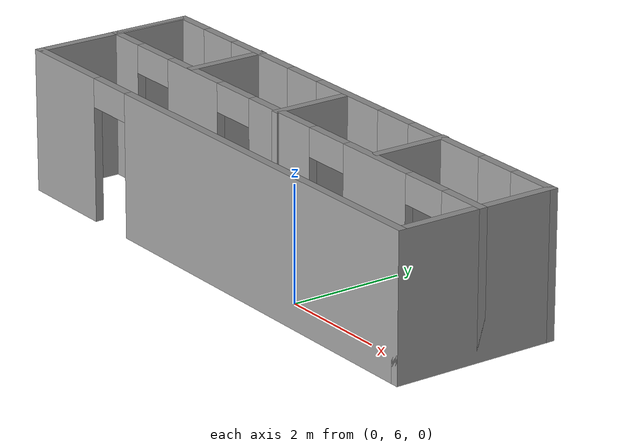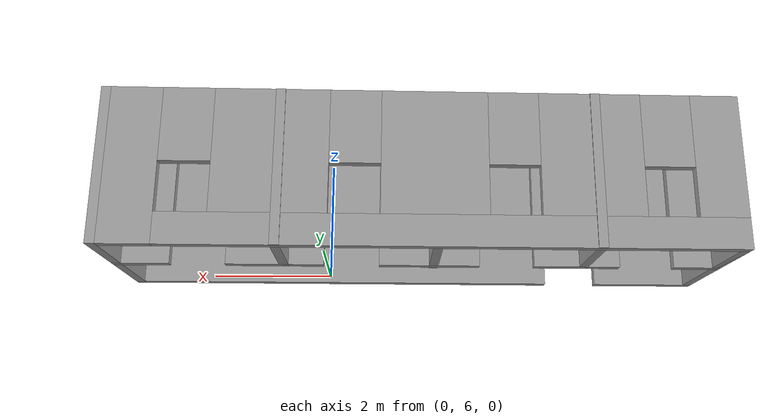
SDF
<?xml version='1.0'?>
<sdf version='1.7'>
  <model name='hospital'>
    <pose>-1.51099 4.19428 0 0 -0 0</pose>
    <link name='Wall_11'>
      <collision name='Wall_11_Collision'>
        <geometry>
          <box>
            <size>1.5 0.15 2.5</size>
          </box>
        </geometry>
        <pose>0 0 1.25 0 -0 0</pose>
      </collision>
      <visual name='Wall_11_Visual'>
        <pose>0 0 1.25 0 -0 0</pose>
        <geometry>
          <box>
            <size>1.5 0.15 2.5</size>
          </box>
        </geometry>
        <material>
          <script>
            <uri>file://media/materials/scripts/gazebo.material</uri>
            <name>Gazebo/Grey</name>
          </script>
          <ambient>1 1 1 1</ambient>
        </material>
        <meta>
          <layer>0</layer>
        </meta>
      </visual>
      <pose>2.22844 3.44428 0 0 -0 -1.5708</pose>
    </link>
    <link name='Wall_13'>
      <collision name='Wall_13_Collision'>
        <geometry>
          <box>
            <size>1.5 0.15 2.5</size>
          </box>
        </geometry>
        <pose>0 0 1.25 0 -0 0</pose>
      </collision>
      <visual name='Wall_13_Visual'>
        <pose>0 0 1.25 0 -0 0</pose>
        <geometry>
          <box>
            <size>1.5 0.15 2.5</size>
          </box>
        </geometry>
        <material>
          <script>
            <uri>file://media/materials/scripts/gazebo.material</uri>
            <name>Gazebo/Grey</name>
          </script>
          <ambient>1 1 1 1</ambient>
        </material>
        <meta>
          <layer>0</layer>
        </meta>
      </visual>
      <pose>-2.70376 3.44428 0 0 -0 -1.5708</pose>
    </link>
    <link name='Wall_15'>
      <collision name='Wall_15_Collision'>
        <geometry>
          <box>
            <size>1.5 0.15 2.5</size>
          </box>
        </geometry>
        <pose>0 0 1.25 0 -0 0</pose>
      </collision>
      <visual name='Wall_15_Visual'>
        <pose>0 0 1.25 0 -0 0</pose>
        <geometry>
          <box>
            <size>1.5 0.15 2.5</size>
          </box>
        </geometry>
        <material>
          <script>
            <uri>file://media/materials/scripts/gazebo.material</uri>
            <name>Gazebo/Grey</name>
          </script>
          <ambient>1 1 1 1</ambient>
        </material>
        <meta>
          <layer>0</layer>
        </meta>
      </visual>
      <pose>-0.220173 3.39181 0 0 -0 -1.5708</pose>
    </link>
    <link name='Wall_4'>
      <collision name='Wall_4_Collision'>
        <geometry>
          <box>
            <size>3 0.15 2.5</size>
          </box>
        </geometry>
        <pose>0 0 1.25 0 -0 0</pose>
      </collision>
      <visual name='Wall_4_Visual'>
        <pose>0 0 1.25 0 -0 0</pose>
        <geometry>
          <box>
            <size>3 0.15 2.5</size>
          </box>
        </geometry>
        <material>
          <script>
            <uri>file://media/materials/scripts/gazebo.material</uri>
            <name>Gazebo/Grey</name>
          </script>
          <ambient>1 1 1 1</ambient>
        </material>
        <meta>
          <layer>0</layer>
        </meta>
      </visual>
      <pose>-4.925 2.67679 0 0 -0 -1.5708</pose>
    </link>
    <link name='Wall_5'>
      <pose>0 1.25179 0 0 -0 0</pose>
      <visual name='Wall_5_Visual_0'>
        <pose>-4.11186 0 1.25 0 -0 0</pose>
        <geometry>
          <box>
            <size>1.77628 0.15 2.5</size>
          </box>
        </geometry>
        <material>
          <script>
            <uri>file://media/materials/scripts/gazebo.material</uri>
            <name>Gazebo/Grey</name>
          </script>
          <ambient>1 1 1 1</ambient>
        </material>
        <meta>
          <layer>0</layer>
        </meta>
      </visual>
      <collision name='Wall_5_Collision_0'>
        <geometry>
          <box>
            <size>1.77628 0.15 2.5</size>
          </box>
        </geometry>
        <pose>-4.11186 0 1.25 0 -0 0</pose>
      </collision>
      <visual name='Wall_5_Visual_1'>
        <pose>1.33814 0 1.25 0 -0 0</pose>
        <geometry>
          <box>
            <size>7.32372 0.15 2.5</size>
          </box>
        </geometry>
        <material>
          <script>
            <uri>file://media/materials/scripts/gazebo.material</uri>
            <name>Gazebo/Grey</name>
          </script>
          <ambient>1 1 1 1</ambient>
        </material>
        <meta>
          <layer>0</layer>
        </meta>
      </visual>
      <collision name='Wall_5_Collision_1'>
        <geometry>
          <box>
            <size>7.32372 0.15 2.5</size>
          </box>
        </geometry>
        <pose>1.33814 0 1.25 0 -0 0</pose>
      </collision>
      <visual name='Wall_5_Visual_2'>
        <pose>-2.77372 0 2.25 0 -0 0</pose>
        <geometry>
          <box>
            <size>0.9 0.15 0.5</size>
          </box>
        </geometry>
        <material>
          <script>
            <uri>file://media/materials/scripts/gazebo.material</uri>
            <name>Gazebo/Grey</name>
          </script>
          <ambient>1 1 1 1</ambient>
        </material>
        <meta>
          <layer>0</layer>
        </meta>
      </visual>
      <collision name='Wall_5_Collision_2'>
        <geometry>
          <box>
            <size>0.9 0.15 0.5</size>
          </box>
        </geometry>
        <pose>-2.77372 0 2.25 0 -0 0</pose>
      </collision>
    </link>
    <link name='Wall_6'>
      <collision name='Wall_6_Collision'>
        <geometry>
          <box>
            <size>3 0.15 2.5</size>
          </box>
        </geometry>
        <pose>0 0 1.25 0 -0 0</pose>
      </collision>
      <visual name='Wall_6_Visual'>
        <pose>0 0 1.25 0 -0 0</pose>
        <geometry>
          <box>
            <size>3 0.15 2.5</size>
          </box>
        </geometry>
        <material>
          <script>
            <uri>file://media/materials/scripts/gazebo.material</uri>
            <name>Gazebo/Grey</name>
          </script>
          <ambient>1 1 1 1</ambient>
        </material>
        <meta>
          <layer>0</layer>
        </meta>
      </visual>
      <pose>4.925 2.67679 0 0 -0 1.5708</pose>
    </link>
    <link name='Wall_7'>
      <pose>0 4.10179 0 0 -0 3.14159</pose>
      <visual name='Wall_7_Visual_0'>
        <pose>-4.52257 0 1.25 0 -0 0</pose>
        <geometry>
          <box>
            <size>0.954869 0.15 2.5</size>
          </box>
        </geometry>
        <material>
          <script>
            <uri>file://media/materials/scripts/gazebo.material</uri>
            <name>Gazebo/Grey</name>
          </script>
          <ambient>1 1 1 1</ambient>
        </material>
        <meta>
          <layer>0</layer>
        </meta>
      </visual>
      <collision name='Wall_7_Collision_0'>
        <geometry>
          <box>
            <size>0.954869 0.15 2.5</size>
          </box>
        </geometry>
        <pose>-4.52257 0 1.25 0 -0 0</pose>
      </collision>
      <visual name='Wall_7_Visual_1'>
        <pose>0.477435 0 0.25 0 -0 0</pose>
        <geometry>
          <box>
            <size>9.04513 0.15 0.5</size>
          </box>
        </geometry>
        <material>
          <script>
            <uri>file://media/materials/scripts/gazebo.material</uri>
            <name>Gazebo/Grey</name>
          </script>
          <ambient>1 1 1 1</ambient>
        </material>
        <meta>
          <layer>0</layer>
        </meta>
      </visual>
      <collision name='Wall_7_Collision_1'>
        <geometry>
          <box>
            <size>9.04513 0.15 0.5</size>
          </box>
        </geometry>
        <pose>0.477435 0 0.25 0 -0 0</pose>
      </collision>
      <visual name='Wall_7_Visual_2'>
        <pose>-2.35087 0 1.5 0 -0 0</pose>
        <geometry>
          <box>
            <size>1.78853 0.15 2</size>
          </box>
        </geometry>
        <material>
          <script>
            <uri>file://media/materials/scripts/gazebo.material</uri>
            <name>Gazebo/Grey</name>
          </script>
          <ambient>1 1 1 1</ambient>
        </material>
        <meta>
          <layer>0</layer>
        </meta>
      </visual>
      <collision name='Wall_7_Collision_2'>
        <geometry>
          <box>
            <size>1.78853 0.15 2</size>
          </box>
        </geometry>
        <pose>-2.35087 0 1.5 0 -0 0</pose>
      </collision>
      <visual name='Wall_7_Visual_3'>
        <pose>0.176448 0 1.5 0 -0 0</pose>
        <geometry>
          <box>
            <size>1.6661 0.15 2</size>
          </box>
        </geometry>
        <material>
          <script>
            <uri>file://media/materials/scripts/gazebo.material</uri>
            <name>Gazebo/Grey</name>
          </script>
          <ambient>1 1 1 1</ambient>
        </material>
        <meta>
          <layer>0</layer>
        </meta>
      </visual>
      <collision name='Wall_7_Collision_3'>
        <geometry>
          <box>
            <size>1.6661 0.15 2</size>
          </box>
        </geometry>
        <pose>0.176448 0 1.5 0 -0 0</pose>
      </collision>
      <visual name='Wall_7_Visual_4'>
        <pose>2.61631 0 1.5 0 -0 0</pose>
        <geometry>
          <box>
            <size>1.61363 0.15 2</size>
          </box>
        </geometry>
        <material>
          <script>
            <uri>file://media/materials/scripts/gazebo.material</uri>
            <name>Gazebo/Grey</name>
          </script>
          <ambient>1 1 1 1</ambient>
        </material>
        <meta>
          <layer>0</layer>
        </meta>
      </visual>
      <collision name='Wall_7_Collision_4'>
        <geometry>
          <box>
            <size>1.61363 0.15 2</size>
          </box>
        </geometry>
        <pose>2.61631 0 1.5 0 -0 0</pose>
      </collision>
      <visual name='Wall_7_Visual_5'>
        <pose>4.61156 0 1.5 0 -0 0</pose>
        <geometry>
          <box>
            <size>0.776874 0.15 2</size>
          </box>
        </geometry>
        <material>
          <script>
            <uri>file://media/materials/scripts/gazebo.material</uri>
            <name>Gazebo/Grey</name>
          </script>
          <ambient>1 1 1 1</ambient>
        </material>
        <meta>
          <layer>0</layer>
        </meta>
      </visual>
      <collision name='Wall_7_Collision_5'>
        <geometry>
          <box>
            <size>0.776874 0.15 2</size>
          </box>
        </geometry>
        <pose>4.61156 0 1.5 0 -0 0</pose>
      </collision>
      <visual name='Wall_7_Visual_6'>
        <pose>-3.64513 0 1.9 0 -0 0</pose>
        <geometry>
          <box>
            <size>0.8 0.15 1.2</size>
          </box>
        </geometry>
        <material>
          <script>
            <uri>file://media/materials/scripts/gazebo.material</uri>
            <name>Gazebo/Grey</name>
          </script>
          <ambient>1 1 1 1</ambient>
        </material>
        <meta>
          <layer>0</layer>
        </meta>
      </visual>
      <collision name='Wall_7_Collision_6'>
        <geometry>
          <box>
            <size>0.8 0.15 1.2</size>
          </box>
        </geometry>
        <pose>-3.64513 0 1.9 0 -0 0</pose>
      </collision>
      <visual name='Wall_7_Visual_7'>
        <pose>-1.0566 0 1.9 0 -0 0</pose>
        <geometry>
          <box>
            <size>0.8 0.15 1.2</size>
          </box>
        </geometry>
        <material>
          <script>
            <uri>file://media/materials/scripts/gazebo.material</uri>
            <name>Gazebo/Grey</name>
          </script>
          <ambient>1 1 1 1</ambient>
        </material>
        <meta>
          <layer>0</layer>
        </meta>
      </visual>
      <collision name='Wall_7_Collision_7'>
        <geometry>
          <box>
            <size>0.8 0.15 1.2</size>
          </box>
        </geometry>
        <pose>-1.0566 0 1.9 0 -0 0</pose>
      </collision>
      <visual name='Wall_7_Visual_8'>
        <pose>1.4095 0 1.9 0 -0 0</pose>
        <geometry>
          <box>
            <size>0.8 0.15 1.2</size>
          </box>
        </geometry>
        <material>
          <script>
            <uri>file://media/materials/scripts/gazebo.material</uri>
            <name>Gazebo/Grey</name>
          </script>
          <ambient>1 1 1 1</ambient>
        </material>
        <meta>
          <layer>0</layer>
        </meta>
      </visual>
      <collision name='Wall_7_Collision_8'>
        <geometry>
          <box>
            <size>0.8 0.15 1.2</size>
          </box>
        </geometry>
        <pose>1.4095 0 1.9 0 -0 0</pose>
      </collision>
      <visual name='Wall_7_Visual_9'>
        <pose>3.82313 0 1.9 0 -0 0</pose>
        <geometry>
          <box>
            <size>0.8 0.15 1.2</size>
          </box>
        </geometry>
        <material>
          <script>
            <uri>file://media/materials/scripts/gazebo.material</uri>
            <name>Gazebo/Grey</name>
          </script>
          <ambient>1 1 1 1</ambient>
        </material>
        <meta>
          <layer>0</layer>
        </meta>
      </visual>
      <collision name='Wall_7_Collision_9'>
        <geometry>
          <box>
            <size>0.8 0.15 1.2</size>
          </box>
        </geometry>
        <pose>3.82313 0 1.9 0 -0 0</pose>
      </collision>
    </link>
    <link name='Wall_8'>
      <collision name='Wall_8_Collision'>
        <geometry>
          <box>
            <size>1.5 0.15 2.5</size>
          </box>
        </geometry>
        <pose>0 0 1.25 0 -0 0</pose>
      </collision>
      <visual name='Wall_8_Visual'>
        <pose>0 0 1.25 0 -0 0</pose>
        <geometry>
          <box>
            <size>1.5 0.15 2.5</size>
          </box>
        </geometry>
        <material>
          <script>
            <uri>file://media/materials/scripts/gazebo.material</uri>
            <name>Gazebo/Grey</name>
          </script>
          <ambient>1 1 1 1</ambient>
        </material>
        <meta>
          <layer>0</layer>
        </meta>
      </visual>
      <pose>-4.925 3.42679 0 0 -0 -1.5708</pose>
    </link>
    <link name='Wall_9'>
      <pose>0 2.75179 0 0 -0 0</pose>
      <visual name='Wall_9_Visual_0'>
        <pose>-4.60158 0 1.25 0 -0 0</pose>
        <geometry>
          <box>
            <size>0.796834 0.15 2.5</size>
          </box>
        </geometry>
        <material>
          <script>
            <uri>file://media/materials/scripts/gazebo.material</uri>
            <name>Gazebo/Grey</name>
          </script>
          <ambient>1 1 1 1</ambient>
        </material>
        <meta>
          <layer>0</layer>
        </meta>
      </visual>
      <collision name='Wall_9_Collision_0'>
        <geometry>
          <box>
            <size>0.796834 0.15 2.5</size>
          </box>
        </geometry>
        <pose>-4.60158 0 1.25 0 -0 0</pose>
      </collision>
      <visual name='Wall_9_Visual_1'>
        <pose>-2.59008 0 1.25 0 -0 0</pose>
        <geometry>
          <box>
            <size>1.42618 0.15 2.5</size>
          </box>
        </geometry>
        <material>
          <script>
            <uri>file://media/materials/scripts/gazebo.material</uri>
            <name>Gazebo/Grey</name>
          </script>
          <ambient>1 1 1 1</ambient>
        </material>
        <meta>
          <layer>0</layer>
        </meta>
      </visual>
      <collision name='Wall_9_Collision_1'>
        <geometry>
          <box>
            <size>1.42618 0.15 2.5</size>
          </box>
        </geometry>
        <pose>-2.59008 0 1.25 0 -0 0</pose>
      </collision>
      <visual name='Wall_9_Visual_2'>
        <pose>-0.150213 0 1.25 0 -0 0</pose>
        <geometry>
          <box>
            <size>1.65355 0.15 2.5</size>
          </box>
        </geometry>
        <material>
          <script>
            <uri>file://media/materials/scripts/gazebo.material</uri>
            <name>Gazebo/Grey</name>
          </script>
          <ambient>1 1 1 1</ambient>
        </material>
        <meta>
          <layer>0</layer>
        </meta>
      </visual>
      <collision name='Wall_9_Collision_2'>
        <geometry>
          <box>
            <size>1.65355 0.15 2.5</size>
          </box>
        </geometry>
        <pose>-0.150213 0 1.25 0 -0 0</pose>
      </collision>
      <visual name='Wall_9_Visual_3'>
        <pose>2.3771 0 1.25 0 -0 0</pose>
        <geometry>
          <box>
            <size>1.60108 0.15 2.5</size>
          </box>
        </geometry>
        <material>
          <script>
            <uri>file://media/materials/scripts/gazebo.material</uri>
            <name>Gazebo/Grey</name>
          </script>
          <ambient>1 1 1 1</ambient>
        </material>
        <meta>
          <layer>0</layer>
        </meta>
      </visual>
      <collision name='Wall_9_Collision_3'>
        <geometry>
          <box>
            <size>1.60108 0.15 2.5</size>
          </box>
        </geometry>
        <pose>2.3771 0 1.25 0 -0 0</pose>
      </collision>
      <visual name='Wall_9_Visual_4'>
        <pose>4.53882 0 1.25 0 -0 0</pose>
        <geometry>
          <box>
            <size>0.92236 0.15 2.5</size>
          </box>
        </geometry>
        <material>
          <script>
            <uri>file://media/materials/scripts/gazebo.material</uri>
            <name>Gazebo/Grey</name>
          </script>
          <ambient>1 1 1 1</ambient>
        </material>
        <meta>
          <layer>0</layer>
        </meta>
      </visual>
      <collision name='Wall_9_Collision_4'>
        <geometry>
          <box>
            <size>0.92236 0.15 2.5</size>
          </box>
        </geometry>
        <pose>4.53882 0 1.25 0 -0 0</pose>
      </collision>
      <visual name='Wall_9_Visual_5'>
        <pose>-3.75317 0 2.25 0 -0 0</pose>
        <geometry>
          <box>
            <size>0.9 0.15 0.5</size>
          </box>
        </geometry>
        <material>
          <script>
            <uri>file://media/materials/scripts/gazebo.material</uri>
            <name>Gazebo/Grey</name>
          </script>
          <ambient>1 1 1 1</ambient>
        </material>
        <meta>
          <layer>0</layer>
        </meta>
      </visual>
      <collision name='Wall_9_Collision_5'>
        <geometry>
          <box>
            <size>0.9 0.15 0.5</size>
          </box>
        </geometry>
        <pose>-3.75317 0 2.25 0 -0 0</pose>
      </collision>
      <visual name='Wall_9_Visual_6'>
        <pose>-1.42699 0 2.25 0 -0 0</pose>
        <geometry>
          <box>
            <size>0.9 0.15 0.5</size>
          </box>
        </geometry>
        <material>
          <script>
            <uri>file://media/materials/scripts/gazebo.material</uri>
            <name>Gazebo/Grey</name>
          </script>
          <ambient>1 1 1 1</ambient>
        </material>
        <meta>
          <layer>0</layer>
        </meta>
      </visual>
      <collision name='Wall_9_Collision_6'>
        <geometry>
          <box>
            <size>0.9 0.15 0.5</size>
          </box>
        </geometry>
        <pose>-1.42699 0 2.25 0 -0 0</pose>
      </collision>
      <visual name='Wall_9_Visual_7'>
        <pose>1.12656 0 2.25 0 -0 0</pose>
        <geometry>
          <box>
            <size>0.9 0.15 0.5</size>
          </box>
        </geometry>
        <material>
          <script>
            <uri>file://media/materials/scripts/gazebo.material</uri>
            <name>Gazebo/Grey</name>
          </script>
          <ambient>1 1 1 1</ambient>
        </material>
        <meta>
          <layer>0</layer>
        </meta>
      </visual>
      <collision name='Wall_9_Collision_7'>
        <geometry>
          <box>
            <size>0.9 0.15 0.5</size>
          </box>
        </geometry>
        <pose>1.12656 0 2.25 0 -0 0</pose>
      </collision>
      <visual name='Wall_9_Visual_8'>
        <pose>3.62764 0 2.25 0 -0 0</pose>
        <geometry>
          <box>
            <size>0.9 0.15 0.5</size>
          </box>
        </geometry>
        <material>
          <script>
            <uri>file://media/materials/scripts/gazebo.material</uri>
            <name>Gazebo/Grey</name>
          </script>
          <ambient>1 1 1 1</ambient>
        </material>
        <meta>
          <layer>0</layer>
        </meta>
      </visual>
      <collision name='Wall_9_Collision_8'>
        <geometry>
          <box>
            <size>0.9 0.15 0.5</size>
          </box>
        </geometry>
        <pose>3.62764 0 2.25 0 -0 0</pose>
      </collision>
    </link>
    <static>1</static>
  </model>
</sdf>
